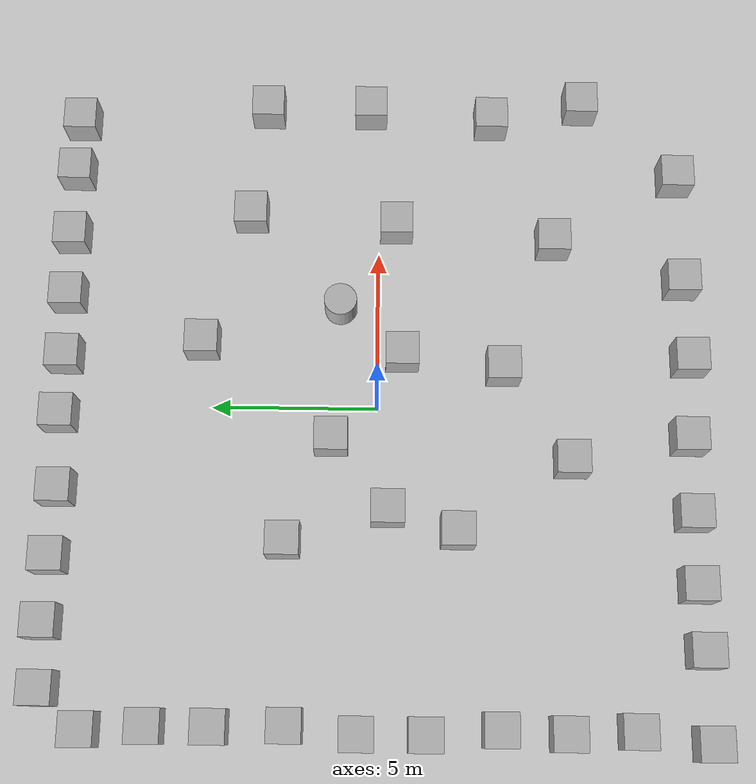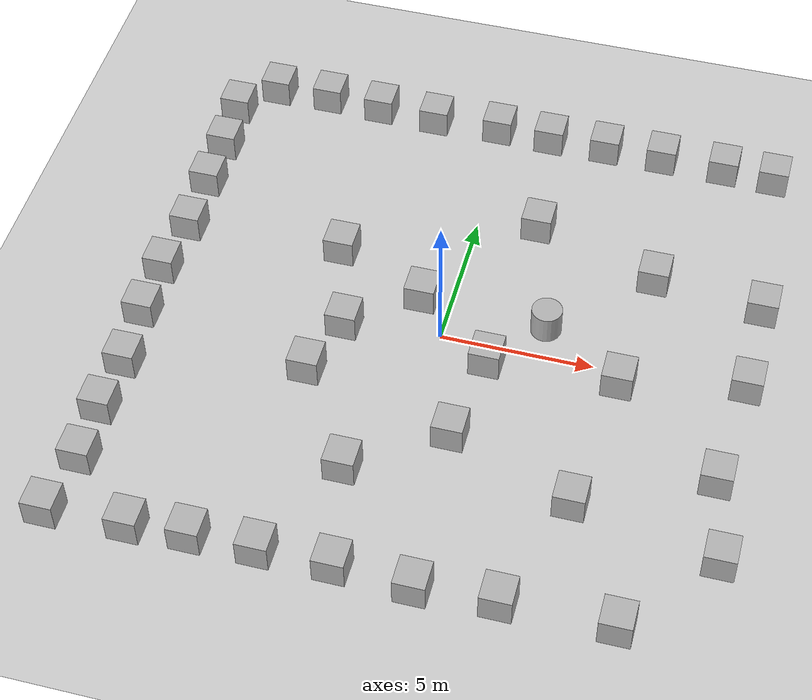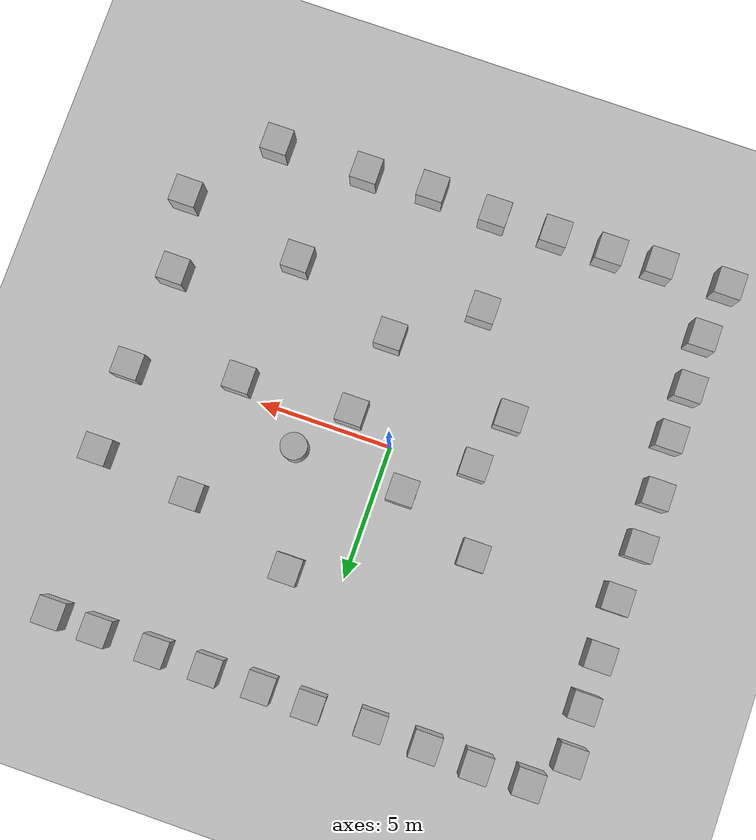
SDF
<sdf version='1.10'>
  <world name='diff_robot_world'>
    <physics type='ode'>
      <max_step_size>0.0030000000000000001</max_step_size>
      <real_time_update_rate>1000</real_time_update_rate>
      <real_time_factor>1</real_time_factor>
    </physics>
    <plugin name='gz::sim::systems::Physics' filename='gz-sim-physics-system'/>
    <plugin name='gz::sim::systems::UserCommands' filename='gz-sim-user-commands-system'/>
    <plugin name='gz::sim::systems::SceneBroadcaster' filename='gz-sim-scene-broadcaster-system'/>
    <plugin name='gz::sim::systems::Sensors' filename='gz-sim-sensors-system'>
      <render_engine>ogre2</render_engine>
    </plugin>
    <plugin name='gz::sim::systems::Imu' filename='gz-sim-imu-system'/>
    <gravity>0 0 -9.8000000000000007</gravity>
    <magnetic_field>5.5644999999999998e-06 2.2875799999999999e-05 -4.2388400000000002e-05</magnetic_field>
    <atmosphere type='adiabatic'/>
    <scene>
      <ambient>0.400000006 0.400000006 0.400000006 1</ambient>
      <background>0.699999988 0.699999988 0.699999988 1</background>
      <shadows>true</shadows>
    </scene>
    <model name='ground_plane'>
      <static>true</static>
      <link name='link'>
        <collision name='collision'>
          <geometry>
            <plane>
              <normal>0 0 1</normal>
              <size>100 100</size>
            </plane>
          </geometry>
          <surface>
            <friction>
              <ode/>
            </friction>
            <bounce/>
            <contact/>
          </surface>
        </collision>
        <visual name='visual'>
          <geometry>
            <plane>
              <normal>0 0 1</normal>
              <size>100 100</size>
            </plane>
          </geometry>
          <material>
            <ambient>0.800000012 0.800000012 0.800000012 1</ambient>
            <diffuse>0.800000012 0.800000012 0.800000012 1</diffuse>
          </material>
        </visual>
        <pose>0 0 0 0 0 0</pose>
        <inertial>
          <pose>0 0 0 0 0 0</pose>
          <mass>1</mass>
          <inertia>
            <ixx>1</ixx>
            <ixy>0</ixy>
            <ixz>0</ixz>
            <iyy>1</iyy>
            <iyz>0</iyz>
            <izz>1</izz>
          </inertia>
        </inertial>
        <enable_wind>false</enable_wind>
      </link>
      <pose>0 0 0 0 0 0</pose>
      <self_collide>false</self_collide>
    </model>
    <model name='box'>
      <pose>-0.9634087473483266 1.3688625796676201 0.49999999738031992 4.9980747396177739e-20 -3.1203451716072498e-20 3.07674891441409e-21</pose>
      <link name='box_link'>
        <inertial>
          <inertia>
            <ixx>0.16666</ixx>
            <ixy>0</ixy>
            <ixz>0</ixz>
            <iyy>0.16666</iyy>
            <iyz>0</iyz>
            <izz>0.16666</izz>
          </inertia>
          <mass>1</mass>
          <pose>0 0 0 0 0 0</pose>
        </inertial>
        <collision name='box_collision'>
          <geometry>
            <box>
              <size>1 1 1</size>
            </box>
          </geometry>
          <surface>
            <friction>
              <ode/>
            </friction>
            <bounce/>
            <contact/>
          </surface>
        </collision>
        <visual name='box_visual'>
          <geometry>
            <box>
              <size>1 1 1</size>
            </box>
          </geometry>
          <material>
            <ambient>0.300000012 0.300000012 0.300000012 1</ambient>
            <diffuse>0.699999988 0.699999988 0.699999988 1</diffuse>
            <specular>1 1 1 1</specular>
          </material>
        </visual>
        <pose>0 0 0 0 0 0</pose>
        <enable_wind>false</enable_wind>
      </link>
      <static>false</static>
      <self_collide>false</self_collide>
    </model>
    <model name='box_0'>
      <pose>1.2883353953918322 -3.8140135786249139 0.49999999738031992 -3.8365972671485688e-20 -2.5801985563961556e-20 -1.3681900801145752e-21</pose>
      <link name='box_link'>
        <inertial>
          <inertia>
            <ixx>0.16666</ixx>
            <ixy>0</ixy>
            <ixz>0</ixz>
            <iyy>0.16666</iyy>
            <iyz>0</iyz>
            <izz>0.16666</izz>
          </inertia>
          <mass>1</mass>
          <pose>0 0 0 0 0 0</pose>
        </inertial>
        <collision name='box_collision'>
          <geometry>
            <box>
              <size>1 1 1</size>
            </box>
          </geometry>
          <surface>
            <friction>
              <ode/>
            </friction>
            <bounce/>
            <contact/>
          </surface>
        </collision>
        <visual name='box_visual'>
          <geometry>
            <box>
              <size>1 1 1</size>
            </box>
          </geometry>
          <material>
            <ambient>0.300000012 0.300000012 0.300000012 1</ambient>
            <diffuse>0.699999988 0.699999988 0.699999988 1</diffuse>
            <specular>1 1 1 1</specular>
          </material>
        </visual>
        <pose>0 0 0 0 0 0</pose>
        <enable_wind>false</enable_wind>
      </link>
      <static>false</static>
      <self_collide>false</self_collide>
    </model>
    <model name='box_1'>
      <pose>2.0217086871739109 5.3420534551731684 0.49999999738031992 4.9980747396177739e-20 -3.1203451716072498e-20 3.07674891441409e-21</pose>
      <link name='box_link'>
        <inertial>
          <inertia>
            <ixx>0.16666</ixx>
            <ixy>0</ixy>
            <ixz>0</ixz>
            <iyy>0.16666</iyy>
            <iyz>0</iyz>
            <izz>0.16666</izz>
          </inertia>
          <mass>1</mass>
          <pose>0 0 0 0 0 0</pose>
        </inertial>
        <collision name='box_collision'>
          <geometry>
            <box>
              <size>1 1 1</size>
            </box>
          </geometry>
          <surface>
            <friction>
              <ode/>
            </friction>
            <bounce/>
            <contact/>
          </surface>
        </collision>
        <visual name='box_visual'>
          <geometry>
            <box>
              <size>1 1 1</size>
            </box>
          </geometry>
          <material>
            <ambient>0.300000012 0.300000012 0.300000012 1</ambient>
            <diffuse>0.699999988 0.699999988 0.699999988 1</diffuse>
            <specular>1 1 1 1</specular>
          </material>
        </visual>
        <pose>0 0 0 0 0 0</pose>
        <enable_wind>false</enable_wind>
      </link>
      <static>false</static>
      <self_collide>false</self_collide>
    </model>
    <model name='box_2'>
      <pose>-4.081543913325933 2.7233802150431523 0.49999999738031992 4.9980747396177739e-20 -3.1203451716072498e-20 3.07674891441409e-21</pose>
      <link name='box_link'>
        <inertial>
          <inertia>
            <ixx>0.16666</ixx>
            <ixy>0</ixy>
            <ixz>0</ixz>
            <iyy>0.16666</iyy>
            <iyz>0</iyz>
            <izz>0.16666</izz>
          </inertia>
          <mass>1</mass>
          <pose>0 0 0 0 0 0</pose>
        </inertial>
        <collision name='box_collision'>
          <geometry>
            <box>
              <size>1 1 1</size>
            </box>
          </geometry>
          <surface>
            <friction>
              <ode/>
            </friction>
            <bounce/>
            <contact/>
          </surface>
        </collision>
        <visual name='box_visual'>
          <geometry>
            <box>
              <size>1 1 1</size>
            </box>
          </geometry>
          <material>
            <ambient>0.300000012 0.300000012 0.300000012 1</ambient>
            <diffuse>0.699999988 0.699999988 0.699999988 1</diffuse>
            <specular>1 1 1 1</specular>
          </material>
        </visual>
        <pose>0 0 0 0 0 0</pose>
        <enable_wind>false</enable_wind>
      </link>
      <static>false</static>
      <self_collide>false</self_collide>
    </model>
    <model name='box_3'>
      <pose>-3.7496723703352135 -2.4130661792074619 0.49999999738031992 4.9980747396177739e-20 -3.1203451716072498e-20 3.07674891441409e-21</pose>
      <link name='box_link'>
        <inertial>
          <inertia>
            <ixx>0.16666</ixx>
            <ixy>0</ixy>
            <ixz>0</ixz>
            <iyy>0.16666</iyy>
            <iyz>0</iyz>
            <izz>0.16666</izz>
          </inertia>
          <mass>1</mass>
          <pose>0 0 0 0 0 0</pose>
        </inertial>
        <collision name='box_collision'>
          <geometry>
            <box>
              <size>1 1 1</size>
            </box>
          </geometry>
          <surface>
            <friction>
              <ode/>
            </friction>
            <bounce/>
            <contact/>
          </surface>
        </collision>
        <visual name='box_visual'>
          <geometry>
            <box>
              <size>1 1 1</size>
            </box>
          </geometry>
          <material>
            <ambient>0.300000012 0.300000012 0.300000012 1</ambient>
            <diffuse>0.699999988 0.699999988 0.699999988 1</diffuse>
            <specular>1 1 1 1</specular>
          </material>
        </visual>
        <pose>0 0 0 0 0 0</pose>
        <enable_wind>false</enable_wind>
      </link>
      <static>false</static>
      <self_collide>false</self_collide>
    </model>
    <model name='box_4'>
      <pose>-1.5745690938959189 -5.8232447263912741 0.49999999738031992 4.9980747396177739e-20 -3.1203451716072498e-20 3.07674891441409e-21</pose>
      <link name='box_link'>
        <inertial>
          <inertia>
            <ixx>0.16666</ixx>
            <ixy>0</ixy>
            <ixz>0</ixz>
            <iyy>0.16666</iyy>
            <iyz>0</iyz>
            <izz>0.16666</izz>
          </inertia>
          <mass>1</mass>
          <pose>0 0 0 0 0 0</pose>
        </inertial>
        <collision name='box_collision'>
          <geometry>
            <box>
              <size>1 1 1</size>
            </box>
          </geometry>
          <surface>
            <friction>
              <ode/>
            </friction>
            <bounce/>
            <contact/>
          </surface>
        </collision>
        <visual name='box_visual'>
          <geometry>
            <box>
              <size>1 1 1</size>
            </box>
          </geometry>
          <material>
            <ambient>0.300000012 0.300000012 0.300000012 1</ambient>
            <diffuse>0.699999988 0.699999988 0.699999988 1</diffuse>
            <specular>1 1 1 1</specular>
          </material>
        </visual>
        <pose>0 0 0 0 0 0</pose>
        <enable_wind>false</enable_wind>
      </link>
      <static>false</static>
      <self_collide>false</self_collide>
    </model>
    <model name='box_5'>
      <pose>5.9096890874497063 -0.54414223329293598 0.49999999738031992 4.9980747396177739e-20 -3.1203451716072498e-20 3.07674891441409e-21</pose>
      <link name='box_link'>
        <inertial>
          <inertia>
            <ixx>0.16666</ixx>
            <ixy>0</ixy>
            <ixz>0</ixz>
            <iyy>0.16666</iyy>
            <iyz>0</iyz>
            <izz>0.16666</izz>
          </inertia>
          <mass>1</mass>
          <pose>0 0 0 0 0 0</pose>
        </inertial>
        <collision name='box_collision'>
          <geometry>
            <box>
              <size>1 1 1</size>
            </box>
          </geometry>
          <surface>
            <friction>
              <ode/>
            </friction>
            <bounce/>
            <contact/>
          </surface>
        </collision>
        <visual name='box_visual'>
          <geometry>
            <box>
              <size>1 1 1</size>
            </box>
          </geometry>
          <material>
            <ambient>0.300000012 0.300000012 0.300000012 1</ambient>
            <diffuse>0.699999988 0.699999988 0.699999988 1</diffuse>
            <specular>1 1 1 1</specular>
          </material>
        </visual>
        <pose>0 0 0 0 0 0</pose>
        <enable_wind>false</enable_wind>
      </link>
      <static>false</static>
      <self_collide>false</self_collide>
    </model>
    <model name='box_6'>
      <pose>6.2234744298795466 3.986266995621651 0.49999999738031992 1.0474352410748287e-20 8.8316415697955254e-20 1.1798344970724298e-22</pose>
      <link name='box_link'>
        <inertial>
          <inertia>
            <ixx>0.16666</ixx>
            <ixy>0</ixy>
            <ixz>0</ixz>
            <iyy>0.16666</iyy>
            <iyz>0</iyz>
            <izz>0.16666</izz>
          </inertia>
          <mass>1</mass>
          <pose>0 0 0 0 0 0</pose>
        </inertial>
        <collision name='box_collision'>
          <geometry>
            <box>
              <size>1 1 1</size>
            </box>
          </geometry>
          <surface>
            <friction>
              <ode/>
            </friction>
            <bounce/>
            <contact/>
          </surface>
        </collision>
        <visual name='box_visual'>
          <geometry>
            <box>
              <size>1 1 1</size>
            </box>
          </geometry>
          <material>
            <ambient>0.300000012 0.300000012 0.300000012 1</ambient>
            <diffuse>0.699999988 0.699999988 0.699999988 1</diffuse>
            <specular>1 1 1 1</specular>
          </material>
        </visual>
        <pose>0 0 0 0 0 0</pose>
        <enable_wind>false</enable_wind>
      </link>
      <static>false</static>
      <self_collide>false</self_collide>
    </model>
    <model name='box_7'>
      <pose>5.4132077069463413 -5.4073851982764829 0.49999999738031992 4.9980747396177739e-20 -3.1203451716072498e-20 3.07674891441409e-21</pose>
      <link name='box_link'>
        <inertial>
          <inertia>
            <ixx>0.16666</ixx>
            <ixy>0</ixy>
            <ixz>0</ixz>
            <iyy>0.16666</iyy>
            <iyz>0</iyz>
            <izz>0.16666</izz>
          </inertia>
          <mass>1</mass>
          <pose>0 0 0 0 0 0</pose>
        </inertial>
        <collision name='box_collision'>
          <geometry>
            <box>
              <size>1 1 1</size>
            </box>
          </geometry>
          <surface>
            <friction>
              <ode/>
            </friction>
            <bounce/>
            <contact/>
          </surface>
        </collision>
        <visual name='box_visual'>
          <geometry>
            <box>
              <size>1 1 1</size>
            </box>
          </geometry>
          <material>
            <ambient>0.300000012 0.300000012 0.300000012 1</ambient>
            <diffuse>0.699999988 0.699999988 0.699999988 1</diffuse>
            <specular>1 1 1 1</specular>
          </material>
        </visual>
        <pose>0 0 0 0 0 0</pose>
        <enable_wind>false</enable_wind>
      </link>
      <static>false</static>
      <self_collide>false</self_collide>
    </model>
    <model name='box_8'>
      <pose>9.3565873409996101 9.4877874167706899 0.49999999824478447 2.364077673559574e-20 -1.6121523966119597e-20 2.768519146214809e-21</pose>
      <link name='box_link'>
        <inertial>
          <inertia>
            <ixx>0.16666</ixx>
            <ixy>0</ixy>
            <ixz>0</ixz>
            <iyy>0.16666</iyy>
            <iyz>0</iyz>
            <izz>0.16666</izz>
          </inertia>
          <mass>1</mass>
          <pose>0 0 0 0 0 0</pose>
        </inertial>
        <collision name='box_collision'>
          <geometry>
            <box>
              <size>1 1 1</size>
            </box>
          </geometry>
          <surface>
            <friction>
              <ode/>
            </friction>
            <bounce/>
            <contact/>
          </surface>
        </collision>
        <visual name='box_visual'>
          <geometry>
            <box>
              <size>1 1 1</size>
            </box>
          </geometry>
          <material>
            <ambient>0.300000012 0.300000012 0.300000012 1</ambient>
            <diffuse>0.699999988 0.699999988 0.699999988 1</diffuse>
            <specular>1 1 1 1</specular>
          </material>
        </visual>
        <pose>0 0 0 0 0 0</pose>
        <enable_wind>false</enable_wind>
      </link>
      <static>false</static>
      <self_collide>false</self_collide>
    </model>
    <model name='box_9'>
      <pose>7.6231862130566235 9.5401951575804702 0.49999999824478447 2.364077673559574e-20 -1.6121523966119597e-20 2.768519146214809e-21</pose>
      <link name='box_link'>
        <inertial>
          <inertia>
            <ixx>0.16666</ixx>
            <ixy>0</ixy>
            <ixz>0</ixz>
            <iyy>0.16666</iyy>
            <iyz>0</iyz>
            <izz>0.16666</izz>
          </inertia>
          <mass>1</mass>
          <pose>0 0 0 0 0 0</pose>
        </inertial>
        <collision name='box_collision'>
          <geometry>
            <box>
              <size>1 1 1</size>
            </box>
          </geometry>
          <surface>
            <friction>
              <ode/>
            </friction>
            <bounce/>
            <contact/>
          </surface>
        </collision>
        <visual name='box_visual'>
          <geometry>
            <box>
              <size>1 1 1</size>
            </box>
          </geometry>
          <material>
            <ambient>0.300000012 0.300000012 0.300000012 1</ambient>
            <diffuse>0.699999988 0.699999988 0.699999988 1</diffuse>
            <specular>1 1 1 1</specular>
          </material>
        </visual>
        <pose>0 0 0 0 0 0</pose>
        <enable_wind>false</enable_wind>
      </link>
      <static>false</static>
      <self_collide>false</self_collide>
    </model>
    <model name='box_8_1'>
      <pose>5.4737988716668937 9.5525448502305004 0.49999999824478447 1.6281751810357478e-20 -3.0935963426003888e-20 3.4892573182497067e-21</pose>
      <link name='box_link'>
        <inertial>
          <inertia>
            <ixx>0.16666</ixx>
            <ixy>0</ixy>
            <ixz>0</ixz>
            <iyy>0.16666</iyy>
            <iyz>0</iyz>
            <izz>0.16666</izz>
          </inertia>
          <mass>1</mass>
          <pose>0 0 0 0 0 0</pose>
        </inertial>
        <collision name='box_collision'>
          <geometry>
            <box>
              <size>1 1 1</size>
            </box>
          </geometry>
          <surface>
            <friction>
              <ode/>
            </friction>
            <bounce/>
            <contact/>
          </surface>
        </collision>
        <visual name='box_visual'>
          <geometry>
            <box>
              <size>1 1 1</size>
            </box>
          </geometry>
          <material>
            <ambient>0.300000012 0.300000012 0.300000012 1</ambient>
            <diffuse>0.699999988 0.699999988 0.699999988 1</diffuse>
            <specular>1 1 1 1</specular>
          </material>
        </visual>
        <pose>0 0 0 0 0 0</pose>
        <enable_wind>false</enable_wind>
      </link>
      <static>false</static>
      <self_collide>false</self_collide>
    </model>
    <model name='box_8_2'>
      <pose>3.492480944589591 9.5415473521650291 0.49999999824478447 1.6281751810357478e-20 -3.0935963426003888e-20 3.4892573182497067e-21</pose>
      <link name='box_link'>
        <inertial>
          <inertia>
            <ixx>0.16666</ixx>
            <ixy>0</ixy>
            <ixz>0</ixz>
            <iyy>0.16666</iyy>
            <iyz>0</iyz>
            <izz>0.16666</izz>
          </inertia>
          <mass>1</mass>
          <pose>0 0 0 0 0 0</pose>
        </inertial>
        <collision name='box_collision'>
          <geometry>
            <box>
              <size>1 1 1</size>
            </box>
          </geometry>
          <surface>
            <friction>
              <ode/>
            </friction>
            <bounce/>
            <contact/>
          </surface>
        </collision>
        <visual name='box_visual'>
          <geometry>
            <box>
              <size>1 1 1</size>
            </box>
          </geometry>
          <material>
            <ambient>0.300000012 0.300000012 0.300000012 1</ambient>
            <diffuse>0.699999988 0.699999988 0.699999988 1</diffuse>
            <specular>1 1 1 1</specular>
          </material>
        </visual>
        <pose>0 0 0 0 0 0</pose>
        <enable_wind>false</enable_wind>
      </link>
      <static>false</static>
      <self_collide>false</self_collide>
    </model>
    <model name='box_8_3'>
      <pose>1.5264982181197233 9.5167588198074107 0.49999999824478447 1.6281751810357478e-20 -3.0935963426003888e-20 3.4892573182497067e-21</pose>
      <link name='box_link'>
        <inertial>
          <inertia>
            <ixx>0.16666</ixx>
            <ixy>0</ixy>
            <ixz>0</ixz>
            <iyy>0.16666</iyy>
            <iyz>0</iyz>
            <izz>0.16666</izz>
          </inertia>
          <mass>1</mass>
          <pose>0 0 0 0 0 0</pose>
        </inertial>
        <collision name='box_collision'>
          <geometry>
            <box>
              <size>1 1 1</size>
            </box>
          </geometry>
          <surface>
            <friction>
              <ode/>
            </friction>
            <bounce/>
            <contact/>
          </surface>
        </collision>
        <visual name='box_visual'>
          <geometry>
            <box>
              <size>1 1 1</size>
            </box>
          </geometry>
          <material>
            <ambient>0.300000012 0.300000012 0.300000012 1</ambient>
            <diffuse>0.699999988 0.699999988 0.699999988 1</diffuse>
            <specular>1 1 1 1</specular>
          </material>
        </visual>
        <pose>0 0 0 0 0 0</pose>
        <enable_wind>false</enable_wind>
      </link>
      <static>false</static>
      <self_collide>false</self_collide>
    </model>
    <model name='box_8_4'>
      <pose>-0.32313615432875409 9.5604271316419371 0.49999999824478447 1.6281751810357478e-20 -3.0935963426003888e-20 3.4892573182497067e-21</pose>
      <link name='box_link'>
        <inertial>
          <inertia>
            <ixx>0.16666</ixx>
            <ixy>0</ixy>
            <ixz>0</ixz>
            <iyy>0.16666</iyy>
            <iyz>0</iyz>
            <izz>0.16666</izz>
          </inertia>
          <mass>1</mass>
          <pose>0 0 0 0 0 0</pose>
        </inertial>
        <collision name='box_collision'>
          <geometry>
            <box>
              <size>1 1 1</size>
            </box>
          </geometry>
          <surface>
            <friction>
              <ode/>
            </friction>
            <bounce/>
            <contact/>
          </surface>
        </collision>
        <visual name='box_visual'>
          <geometry>
            <box>
              <size>1 1 1</size>
            </box>
          </geometry>
          <material>
            <ambient>0.300000012 0.300000012 0.300000012 1</ambient>
            <diffuse>0.699999988 0.699999988 0.699999988 1</diffuse>
            <specular>1 1 1 1</specular>
          </material>
        </visual>
        <pose>0 0 0 0 0 0</pose>
        <enable_wind>false</enable_wind>
      </link>
      <static>false</static>
      <self_collide>false</self_collide>
    </model>
    <model name='box_8_5'>
      <pose>-2.5890402092074574 9.4723698817662374 0.49999999824478447 1.6281751810357478e-20 -3.0935963426003888e-20 3.4892573182497067e-21</pose>
      <link name='box_link'>
        <inertial>
          <inertia>
            <ixx>0.16666</ixx>
            <ixy>0</ixy>
            <ixz>0</ixz>
            <iyy>0.16666</iyy>
            <iyz>0</iyz>
            <izz>0.16666</izz>
          </inertia>
          <mass>1</mass>
          <pose>0 0 0 0 0 0</pose>
        </inertial>
        <collision name='box_collision'>
          <geometry>
            <box>
              <size>1 1 1</size>
            </box>
          </geometry>
          <surface>
            <friction>
              <ode/>
            </friction>
            <bounce/>
            <contact/>
          </surface>
        </collision>
        <visual name='box_visual'>
          <geometry>
            <box>
              <size>1 1 1</size>
            </box>
          </geometry>
          <material>
            <ambient>0.300000012 0.300000012 0.300000012 1</ambient>
            <diffuse>0.699999988 0.699999988 0.699999988 1</diffuse>
            <specular>1 1 1 1</specular>
          </material>
        </visual>
        <pose>0 0 0 0 0 0</pose>
        <enable_wind>false</enable_wind>
      </link>
      <static>false</static>
      <self_collide>false</self_collide>
    </model>
    <model name='box_8_6'>
      <pose>-4.6165908721475599 9.5400372589440465 0.49999999824478447 1.6281751810357478e-20 -3.0935963426003888e-20 3.4892573182497067e-21</pose>
      <link name='box_link'>
        <inertial>
          <inertia>
            <ixx>0.16666</ixx>
            <ixy>0</ixy>
            <ixz>0</ixz>
            <iyy>0.16666</iyy>
            <iyz>0</iyz>
            <izz>0.16666</izz>
          </inertia>
          <mass>1</mass>
          <pose>0 0 0 0 0 0</pose>
        </inertial>
        <collision name='box_collision'>
          <geometry>
            <box>
              <size>1 1 1</size>
            </box>
          </geometry>
          <surface>
            <friction>
              <ode/>
            </friction>
            <bounce/>
            <contact/>
          </surface>
        </collision>
        <visual name='box_visual'>
          <geometry>
            <box>
              <size>1 1 1</size>
            </box>
          </geometry>
          <material>
            <ambient>0.300000012 0.300000012 0.300000012 1</ambient>
            <diffuse>0.699999988 0.699999988 0.699999988 1</diffuse>
            <specular>1 1 1 1</specular>
          </material>
        </visual>
        <pose>0 0 0 0 0 0</pose>
        <enable_wind>false</enable_wind>
      </link>
      <static>false</static>
      <self_collide>false</self_collide>
    </model>
    <model name='box_8_7'>
      <pose>-6.5155839152954655 9.6138005460699141 0.49999999824478447 1.6281751810357478e-20 -3.0935963426003888e-20 3.4892573182497067e-21</pose>
      <link name='box_link'>
        <inertial>
          <inertia>
            <ixx>0.16666</ixx>
            <ixy>0</ixy>
            <ixz>0</ixz>
            <iyy>0.16666</iyy>
            <iyz>0</iyz>
            <izz>0.16666</izz>
          </inertia>
          <mass>1</mass>
          <pose>0 0 0 0 0 0</pose>
        </inertial>
        <collision name='box_collision'>
          <geometry>
            <box>
              <size>1 1 1</size>
            </box>
          </geometry>
          <surface>
            <friction>
              <ode/>
            </friction>
            <bounce/>
            <contact/>
          </surface>
        </collision>
        <visual name='box_visual'>
          <geometry>
            <box>
              <size>1 1 1</size>
            </box>
          </geometry>
          <material>
            <ambient>0.300000012 0.300000012 0.300000012 1</ambient>
            <diffuse>0.699999988 0.699999988 0.699999988 1</diffuse>
            <specular>1 1 1 1</specular>
          </material>
        </visual>
        <pose>0 0 0 0 0 0</pose>
        <enable_wind>false</enable_wind>
      </link>
      <static>false</static>
      <self_collide>false</self_collide>
    </model>
    <model name='box_8_8'>
      <pose>-8.4021265702489529 9.5675414296998422 0.49999999824478447 1.6281751810357478e-20 -3.0935963426003888e-20 3.4892573182497067e-21</pose>
      <link name='box_link'>
        <inertial>
          <inertia>
            <ixx>0.16666</ixx>
            <ixy>0</ixy>
            <ixz>0</ixz>
            <iyy>0.16666</iyy>
            <iyz>0</iyz>
            <izz>0.16666</izz>
          </inertia>
          <mass>1</mass>
          <pose>0 0 0 0 0 0</pose>
        </inertial>
        <collision name='box_collision'>
          <geometry>
            <box>
              <size>1 1 1</size>
            </box>
          </geometry>
          <surface>
            <friction>
              <ode/>
            </friction>
            <bounce/>
            <contact/>
          </surface>
        </collision>
        <visual name='box_visual'>
          <geometry>
            <box>
              <size>1 1 1</size>
            </box>
          </geometry>
          <material>
            <ambient>0.300000012 0.300000012 0.300000012 1</ambient>
            <diffuse>0.699999988 0.699999988 0.699999988 1</diffuse>
            <specular>1 1 1 1</specular>
          </material>
        </visual>
        <pose>0 0 0 0 0 0</pose>
        <enable_wind>false</enable_wind>
      </link>
      <static>false</static>
      <self_collide>false</self_collide>
    </model>
    <model name='box_8_9'>
      <pose>-9.5212673981657616 8.3193879202012191 0.49999999824478447 1.6281751810357478e-20 -3.0935963426003888e-20 3.4892573182497067e-21</pose>
      <link name='box_link'>
        <inertial>
          <inertia>
            <ixx>0.16666</ixx>
            <ixy>0</ixy>
            <ixz>0</ixz>
            <iyy>0.16666</iyy>
            <iyz>0</iyz>
            <izz>0.16666</izz>
          </inertia>
          <mass>1</mass>
          <pose>0 0 0 0 0 0</pose>
        </inertial>
        <collision name='box_collision'>
          <geometry>
            <box>
              <size>1 1 1</size>
            </box>
          </geometry>
          <surface>
            <friction>
              <ode/>
            </friction>
            <bounce/>
            <contact/>
          </surface>
        </collision>
        <visual name='box_visual'>
          <geometry>
            <box>
              <size>1 1 1</size>
            </box>
          </geometry>
          <material>
            <ambient>0.300000012 0.300000012 0.300000012 1</ambient>
            <diffuse>0.699999988 0.699999988 0.699999988 1</diffuse>
            <specular>1 1 1 1</specular>
          </material>
        </visual>
        <pose>0 0 0 0 0 0</pose>
        <enable_wind>false</enable_wind>
      </link>
      <static>false</static>
      <self_collide>false</self_collide>
    </model>
    <model name='box_8_10'>
      <pose>-9.4148464617709209 6.4680330247149485 0.49999999824478447 1.6281751810357478e-20 -3.0935963426003888e-20 3.4892573182497067e-21</pose>
      <link name='box_link'>
        <inertial>
          <inertia>
            <ixx>0.16666</ixx>
            <ixy>0</ixy>
            <ixz>0</ixz>
            <iyy>0.16666</iyy>
            <iyz>0</iyz>
            <izz>0.16666</izz>
          </inertia>
          <mass>1</mass>
          <pose>0 0 0 0 0 0</pose>
        </inertial>
        <collision name='box_collision'>
          <geometry>
            <box>
              <size>1 1 1</size>
            </box>
          </geometry>
          <surface>
            <friction>
              <ode/>
            </friction>
            <bounce/>
            <contact/>
          </surface>
        </collision>
        <visual name='box_visual'>
          <geometry>
            <box>
              <size>1 1 1</size>
            </box>
          </geometry>
          <material>
            <ambient>0.300000012 0.300000012 0.300000012 1</ambient>
            <diffuse>0.699999988 0.699999988 0.699999988 1</diffuse>
            <specular>1 1 1 1</specular>
          </material>
        </visual>
        <pose>0 0 0 0 0 0</pose>
        <enable_wind>false</enable_wind>
      </link>
      <static>false</static>
      <self_collide>false</self_collide>
    </model>
    <model name='box_8_11'>
      <pose>-9.4148460529440925 4.6364374343888173 0.49999999824478447 1.6281751810357478e-20 -3.0935963426003888e-20 3.4892573182497067e-21</pose>
      <link name='box_link'>
        <inertial>
          <inertia>
            <ixx>0.16666</ixx>
            <ixy>0</ixy>
            <ixz>0</ixz>
            <iyy>0.16666</iyy>
            <iyz>0</iyz>
            <izz>0.16666</izz>
          </inertia>
          <mass>1</mass>
          <pose>0 0 0 0 0 0</pose>
        </inertial>
        <collision name='box_collision'>
          <geometry>
            <box>
              <size>1 1 1</size>
            </box>
          </geometry>
          <surface>
            <friction>
              <ode/>
            </friction>
            <bounce/>
            <contact/>
          </surface>
        </collision>
        <visual name='box_visual'>
          <geometry>
            <box>
              <size>1 1 1</size>
            </box>
          </geometry>
          <material>
            <ambient>0.300000012 0.300000012 0.300000012 1</ambient>
            <diffuse>0.699999988 0.699999988 0.699999988 1</diffuse>
            <specular>1 1 1 1</specular>
          </material>
        </visual>
        <pose>0 0 0 0 0 0</pose>
        <enable_wind>false</enable_wind>
      </link>
      <static>false</static>
      <self_collide>false</self_collide>
    </model>
    <model name='box_8_12'>
      <pose>-9.3615201152689806 2.513790683755464 0.49999999824478447 1.6281751810357478e-20 -3.0935963426003888e-20 3.4892573182497067e-21</pose>
      <link name='box_link'>
        <inertial>
          <inertia>
            <ixx>0.16666</ixx>
            <ixy>0</ixy>
            <ixz>0</ixz>
            <iyy>0.16666</iyy>
            <iyz>0</iyz>
            <izz>0.16666</izz>
          </inertia>
          <mass>1</mass>
          <pose>0 0 0 0 0 0</pose>
        </inertial>
        <collision name='box_collision'>
          <geometry>
            <box>
              <size>1 1 1</size>
            </box>
          </geometry>
          <surface>
            <friction>
              <ode/>
            </friction>
            <bounce/>
            <contact/>
          </surface>
        </collision>
        <visual name='box_visual'>
          <geometry>
            <box>
              <size>1 1 1</size>
            </box>
          </geometry>
          <material>
            <ambient>0.300000012 0.300000012 0.300000012 1</ambient>
            <diffuse>0.699999988 0.699999988 0.699999988 1</diffuse>
            <specular>1 1 1 1</specular>
          </material>
        </visual>
        <pose>0 0 0 0 0 0</pose>
        <enable_wind>false</enable_wind>
      </link>
      <static>false</static>
      <self_collide>false</self_collide>
    </model>
    <model name='box_8_13'>
      <pose>-9.5742964793051755 0.48626485503910732 0.49999999824478447 1.6281751810357478e-20 -3.0935963426003888e-20 3.4892573182497067e-21</pose>
      <link name='box_link'>
        <inertial>
          <inertia>
            <ixx>0.16666</ixx>
            <ixy>0</ixy>
            <ixz>0</ixz>
            <iyy>0.16666</iyy>
            <iyz>0</iyz>
            <izz>0.16666</izz>
          </inertia>
          <mass>1</mass>
          <pose>0 0 0 0 0 0</pose>
        </inertial>
        <collision name='box_collision'>
          <geometry>
            <box>
              <size>1 1 1</size>
            </box>
          </geometry>
          <surface>
            <friction>
              <ode/>
            </friction>
            <bounce/>
            <contact/>
          </surface>
        </collision>
        <visual name='box_visual'>
          <geometry>
            <box>
              <size>1 1 1</size>
            </box>
          </geometry>
          <material>
            <ambient>0.300000012 0.300000012 0.300000012 1</ambient>
            <diffuse>0.699999988 0.699999988 0.699999988 1</diffuse>
            <specular>1 1 1 1</specular>
          </material>
        </visual>
        <pose>0 0 0 0 0 0</pose>
        <enable_wind>false</enable_wind>
      </link>
      <static>false</static>
      <self_collide>false</self_collide>
    </model>
    <model name='box_8_14'>
      <pose>-9.5742958874423749 -1.4669876318293507 0.49999999824478447 1.6281751810357478e-20 -3.0935963426003888e-20 3.4892573182497067e-21</pose>
      <link name='box_link'>
        <inertial>
          <inertia>
            <ixx>0.16666</ixx>
            <ixy>0</ixy>
            <ixz>0</ixz>
            <iyy>0.16666</iyy>
            <iyz>0</iyz>
            <izz>0.16666</izz>
          </inertia>
          <mass>1</mass>
          <pose>0 0 0 0 0 0</pose>
        </inertial>
        <collision name='box_collision'>
          <geometry>
            <box>
              <size>1 1 1</size>
            </box>
          </geometry>
          <surface>
            <friction>
              <ode/>
            </friction>
            <bounce/>
            <contact/>
          </surface>
        </collision>
        <visual name='box_visual'>
          <geometry>
            <box>
              <size>1 1 1</size>
            </box>
          </geometry>
          <material>
            <ambient>0.300000012 0.300000012 0.300000012 1</ambient>
            <diffuse>0.699999988 0.699999988 0.699999988 1</diffuse>
            <specular>1 1 1 1</specular>
          </material>
        </visual>
        <pose>0 0 0 0 0 0</pose>
        <enable_wind>false</enable_wind>
      </link>
      <static>false</static>
      <self_collide>false</self_collide>
    </model>
    <model name='box_8_15'>
      <pose>-9.4148446916939292 -3.5924114219019128 0.49999999824478447 1.6281751810357478e-20 -3.0935963426003888e-20 3.4892573182497067e-21</pose>
      <link name='box_link'>
        <inertial>
          <inertia>
            <ixx>0.16666</ixx>
            <ixy>0</ixy>
            <ixz>0</ixz>
            <iyy>0.16666</iyy>
            <iyz>0</iyz>
            <izz>0.16666</izz>
          </inertia>
          <mass>1</mass>
          <pose>0 0 0 0 0 0</pose>
        </inertial>
        <collision name='box_collision'>
          <geometry>
            <box>
              <size>1 1 1</size>
            </box>
          </geometry>
          <surface>
            <friction>
              <ode/>
            </friction>
            <bounce/>
            <contact/>
          </surface>
        </collision>
        <visual name='box_visual'>
          <geometry>
            <box>
              <size>1 1 1</size>
            </box>
          </geometry>
          <material>
            <ambient>0.300000012 0.300000012 0.300000012 1</ambient>
            <diffuse>0.699999988 0.699999988 0.699999988 1</diffuse>
            <specular>1 1 1 1</specular>
          </material>
        </visual>
        <pose>0 0 0 0 0 0</pose>
        <enable_wind>false</enable_wind>
      </link>
      <static>false</static>
      <self_collide>false</self_collide>
    </model>
    <model name='box_8_16'>
      <pose>-9.5035816782641902 -5.5099098937385556 0.49999999824478447 1.6281751810357478e-20 -3.0935963426003888e-20 3.4892573182497067e-21</pose>
      <link name='box_link'>
        <inertial>
          <inertia>
            <ixx>0.16666</ixx>
            <ixy>0</ixy>
            <ixz>0</ixz>
            <iyy>0.16666</iyy>
            <iyz>0</iyz>
            <izz>0.16666</izz>
          </inertia>
          <mass>1</mass>
          <pose>0 0 0 0 0 0</pose>
        </inertial>
        <collision name='box_collision'>
          <geometry>
            <box>
              <size>1 1 1</size>
            </box>
          </geometry>
          <surface>
            <friction>
              <ode/>
            </friction>
            <bounce/>
            <contact/>
          </surface>
        </collision>
        <visual name='box_visual'>
          <geometry>
            <box>
              <size>1 1 1</size>
            </box>
          </geometry>
          <material>
            <ambient>0.300000012 0.300000012 0.300000012 1</ambient>
            <diffuse>0.699999988 0.699999988 0.699999988 1</diffuse>
            <specular>1 1 1 1</specular>
          </material>
        </visual>
        <pose>0 0 0 0 0 0</pose>
        <enable_wind>false</enable_wind>
      </link>
      <static>false</static>
      <self_collide>false</self_collide>
    </model>
    <model name='box_8_17'>
      <pose>-9.4148457760721485 -7.4689945740362651 0.49999999824478447 1.6281751810357478e-20 -3.0935963426003888e-20 3.4892573182497067e-21</pose>
      <link name='box_link'>
        <inertial>
          <inertia>
            <ixx>0.16666</ixx>
            <ixy>0</ixy>
            <ixz>0</ixz>
            <iyy>0.16666</iyy>
            <iyz>0</iyz>
            <izz>0.16666</izz>
          </inertia>
          <mass>1</mass>
          <pose>0 0 0 0 0 0</pose>
        </inertial>
        <collision name='box_collision'>
          <geometry>
            <box>
              <size>1 1 1</size>
            </box>
          </geometry>
          <surface>
            <friction>
              <ode/>
            </friction>
            <bounce/>
            <contact/>
          </surface>
        </collision>
        <visual name='box_visual'>
          <geometry>
            <box>
              <size>1 1 1</size>
            </box>
          </geometry>
          <material>
            <ambient>0.300000012 0.300000012 0.300000012 1</ambient>
            <diffuse>0.699999988 0.699999988 0.699999988 1</diffuse>
            <specular>1 1 1 1</specular>
          </material>
        </visual>
        <pose>0 0 0 0 0 0</pose>
        <enable_wind>false</enable_wind>
      </link>
      <static>false</static>
      <self_collide>false</self_collide>
    </model>
    <model name='box_8_18'>
      <pose>-9.7231722943082133 -9.5790699910369135 0.49999999824478447 1.6281751810357478e-20 -3.0935963426003888e-20 3.4892573182497067e-21</pose>
      <link name='box_link'>
        <inertial>
          <inertia>
            <ixx>0.16666</ixx>
            <ixy>0</ixy>
            <ixz>0</ixz>
            <iyy>0.16666</iyy>
            <iyz>0</iyz>
            <izz>0.16666</izz>
          </inertia>
          <mass>1</mass>
          <pose>0 0 0 0 0 0</pose>
        </inertial>
        <collision name='box_collision'>
          <geometry>
            <box>
              <size>1 1 1</size>
            </box>
          </geometry>
          <surface>
            <friction>
              <ode/>
            </friction>
            <bounce/>
            <contact/>
          </surface>
        </collision>
        <visual name='box_visual'>
          <geometry>
            <box>
              <size>1 1 1</size>
            </box>
          </geometry>
          <material>
            <ambient>0.300000012 0.300000012 0.300000012 1</ambient>
            <diffuse>0.699999988 0.699999988 0.699999988 1</diffuse>
            <specular>1 1 1 1</specular>
          </material>
        </visual>
        <pose>0 0 0 0 0 0</pose>
        <enable_wind>false</enable_wind>
      </link>
      <static>false</static>
      <self_collide>false</self_collide>
    </model>
    <model name='box_8_19'>
      <pose>-7.1467988913367009 -9.4981250955854186 0.49999999824478447 1.6281751810357478e-20 -3.0935963426003888e-20 3.4892573182497067e-21</pose>
      <link name='box_link'>
        <inertial>
          <inertia>
            <ixx>0.16666</ixx>
            <ixy>0</ixy>
            <ixz>0</ixz>
            <iyy>0.16666</iyy>
            <iyz>0</iyz>
            <izz>0.16666</izz>
          </inertia>
          <mass>1</mass>
          <pose>0 0 0 0 0 0</pose>
        </inertial>
        <collision name='box_collision'>
          <geometry>
            <box>
              <size>1 1 1</size>
            </box>
          </geometry>
          <surface>
            <friction>
              <ode/>
            </friction>
            <bounce/>
            <contact/>
          </surface>
        </collision>
        <visual name='box_visual'>
          <geometry>
            <box>
              <size>1 1 1</size>
            </box>
          </geometry>
          <material>
            <ambient>0.300000012 0.300000012 0.300000012 1</ambient>
            <diffuse>0.699999988 0.699999988 0.699999988 1</diffuse>
            <specular>1 1 1 1</specular>
          </material>
        </visual>
        <pose>0 0 0 0 0 0</pose>
        <enable_wind>false</enable_wind>
      </link>
      <static>false</static>
      <self_collide>false</self_collide>
    </model>
    <model name='box_8_20'>
      <pose>-5.2653262856854042 -9.3813231857213104 0.49999999824478447 1.6281751810357478e-20 -3.0935963426003888e-20 3.4892573182497067e-21</pose>
      <link name='box_link'>
        <inertial>
          <inertia>
            <ixx>0.16666</ixx>
            <ixy>0</ixy>
            <ixz>0</ixz>
            <iyy>0.16666</iyy>
            <iyz>0</iyz>
            <izz>0.16666</izz>
          </inertia>
          <mass>1</mass>
          <pose>0 0 0 0 0 0</pose>
        </inertial>
        <collision name='box_collision'>
          <geometry>
            <box>
              <size>1 1 1</size>
            </box>
          </geometry>
          <surface>
            <friction>
              <ode/>
            </friction>
            <bounce/>
            <contact/>
          </surface>
        </collision>
        <visual name='box_visual'>
          <geometry>
            <box>
              <size>1 1 1</size>
            </box>
          </geometry>
          <material>
            <ambient>0.300000012 0.300000012 0.300000012 1</ambient>
            <diffuse>0.699999988 0.699999988 0.699999988 1</diffuse>
            <specular>1 1 1 1</specular>
          </material>
        </visual>
        <pose>0 0 0 0 0 0</pose>
        <enable_wind>false</enable_wind>
      </link>
      <static>false</static>
      <self_collide>false</self_collide>
    </model>
    <model name='box_8_21'>
      <pose>-3.1593328296332928 -9.361710451507772 0.49999999824478447 1.6281751810357478e-20 -3.0935963426003888e-20 3.4892573182497067e-21</pose>
      <link name='box_link'>
        <inertial>
          <inertia>
            <ixx>0.16666</ixx>
            <ixy>0</ixy>
            <ixz>0</ixz>
            <iyy>0.16666</iyy>
            <iyz>0</iyz>
            <izz>0.16666</izz>
          </inertia>
          <mass>1</mass>
          <pose>0 0 0 0 0 0</pose>
        </inertial>
        <collision name='box_collision'>
          <geometry>
            <box>
              <size>1 1 1</size>
            </box>
          </geometry>
          <surface>
            <friction>
              <ode/>
            </friction>
            <bounce/>
            <contact/>
          </surface>
        </collision>
        <visual name='box_visual'>
          <geometry>
            <box>
              <size>1 1 1</size>
            </box>
          </geometry>
          <material>
            <ambient>0.300000012 0.300000012 0.300000012 1</ambient>
            <diffuse>0.699999988 0.699999988 0.699999988 1</diffuse>
            <specular>1 1 1 1</specular>
          </material>
        </visual>
        <pose>0 0 0 0 0 0</pose>
        <enable_wind>false</enable_wind>
      </link>
      <static>false</static>
      <self_collide>false</self_collide>
    </model>
    <model name='box_8_22'>
      <pose>-0.8446348542786879 -9.346018365171755 0.49999999824478447 1.6281751810357478e-20 -3.0935963426003888e-20 3.4892573182497067e-21</pose>
      <link name='box_link'>
        <inertial>
          <inertia>
            <ixx>0.16666</ixx>
            <ixy>0</ixy>
            <ixz>0</ixz>
            <iyy>0.16666</iyy>
            <iyz>0</iyz>
            <izz>0.16666</izz>
          </inertia>
          <mass>1</mass>
          <pose>0 0 0 0 0 0</pose>
        </inertial>
        <collision name='box_collision'>
          <geometry>
            <box>
              <size>1 1 1</size>
            </box>
          </geometry>
          <surface>
            <friction>
              <ode/>
            </friction>
            <bounce/>
            <contact/>
          </surface>
        </collision>
        <visual name='box_visual'>
          <geometry>
            <box>
              <size>1 1 1</size>
            </box>
          </geometry>
          <material>
            <ambient>0.300000012 0.300000012 0.300000012 1</ambient>
            <diffuse>0.699999988 0.699999988 0.699999988 1</diffuse>
            <specular>1 1 1 1</specular>
          </material>
        </visual>
        <pose>0 0 0 0 0 0</pose>
        <enable_wind>false</enable_wind>
      </link>
      <static>false</static>
      <self_collide>false</self_collide>
    </model>
    <model name='box_8_23'>
      <pose>1.6152109730921893 -9.4812046183395768 0.49999999824478447 1.6281751810357478e-20 -3.0935963426003888e-20 3.4892573182497067e-21</pose>
      <link name='box_link'>
        <inertial>
          <inertia>
            <ixx>0.16666</ixx>
            <ixy>0</ixy>
            <ixz>0</ixz>
            <iyy>0.16666</iyy>
            <iyz>0</iyz>
            <izz>0.16666</izz>
          </inertia>
          <mass>1</mass>
          <pose>0 0 0 0 0 0</pose>
        </inertial>
        <collision name='box_collision'>
          <geometry>
            <box>
              <size>1 1 1</size>
            </box>
          </geometry>
          <surface>
            <friction>
              <ode/>
            </friction>
            <bounce/>
            <contact/>
          </surface>
        </collision>
        <visual name='box_visual'>
          <geometry>
            <box>
              <size>1 1 1</size>
            </box>
          </geometry>
          <material>
            <ambient>0.300000012 0.300000012 0.300000012 1</ambient>
            <diffuse>0.699999988 0.699999988 0.699999988 1</diffuse>
            <specular>1 1 1 1</specular>
          </material>
        </visual>
        <pose>0 0 0 0 0 0</pose>
        <enable_wind>false</enable_wind>
      </link>
      <static>false</static>
      <self_collide>false</self_collide>
    </model>
    <model name='box_8_24'>
      <pose>4.1277118234873669 -9.3420763022534299 0.49999999824478447 1.6281751810357478e-20 -3.0935963426003888e-20 3.4892573182497067e-21</pose>
      <link name='box_link'>
        <inertial>
          <inertia>
            <ixx>0.16666</ixx>
            <ixy>0</ixy>
            <ixz>0</ixz>
            <iyy>0.16666</iyy>
            <iyz>0</iyz>
            <izz>0.16666</izz>
          </inertia>
          <mass>1</mass>
          <pose>0 0 0 0 0 0</pose>
        </inertial>
        <collision name='box_collision'>
          <geometry>
            <box>
              <size>1 1 1</size>
            </box>
          </geometry>
          <surface>
            <friction>
              <ode/>
            </friction>
            <bounce/>
            <contact/>
          </surface>
        </collision>
        <visual name='box_visual'>
          <geometry>
            <box>
              <size>1 1 1</size>
            </box>
          </geometry>
          <material>
            <ambient>0.300000012 0.300000012 0.300000012 1</ambient>
            <diffuse>0.699999988 0.699999988 0.699999988 1</diffuse>
            <specular>1 1 1 1</specular>
          </material>
        </visual>
        <pose>0 0 0 0 0 0</pose>
        <enable_wind>false</enable_wind>
      </link>
      <static>false</static>
      <self_collide>false</self_collide>
    </model>
    <model name='box_8_25'>
      <pose>7.5878781482685511 -9.297635883843018 0.49999999824478447 1.6281751810357478e-20 -3.0935963426003888e-20 3.4892573182497067e-21</pose>
      <link name='box_link'>
        <inertial>
          <inertia>
            <ixx>0.16666</ixx>
            <ixy>0</ixy>
            <ixz>0</ixz>
            <iyy>0.16666</iyy>
            <iyz>0</iyz>
            <izz>0.16666</izz>
          </inertia>
          <mass>1</mass>
          <pose>0 0 0 0 0 0</pose>
        </inertial>
        <collision name='box_collision'>
          <geometry>
            <box>
              <size>1 1 1</size>
            </box>
          </geometry>
          <surface>
            <friction>
              <ode/>
            </friction>
            <bounce/>
            <contact/>
          </surface>
        </collision>
        <visual name='box_visual'>
          <geometry>
            <box>
              <size>1 1 1</size>
            </box>
          </geometry>
          <material>
            <ambient>0.300000012 0.300000012 0.300000012 1</ambient>
            <diffuse>0.699999988 0.699999988 0.699999988 1</diffuse>
            <specular>1 1 1 1</specular>
          </material>
        </visual>
        <pose>0 0 0 0 0 0</pose>
        <enable_wind>false</enable_wind>
      </link>
      <static>false</static>
      <self_collide>false</self_collide>
    </model>
    <model name='box_8_26'>
      <pose>10.078769784268822 -6.3670232023119633 0.49999999824478447 1.6281751810357478e-20 -3.0935963426003888e-20 3.4892573182497067e-21</pose>
      <link name='box_link'>
        <inertial>
          <inertia>
            <ixx>0.16666</ixx>
            <ixy>0</ixy>
            <ixz>0</ixz>
            <iyy>0.16666</iyy>
            <iyz>0</iyz>
            <izz>0.16666</izz>
          </inertia>
          <mass>1</mass>
          <pose>0 0 0 0 0 0</pose>
        </inertial>
        <collision name='box_collision'>
          <geometry>
            <box>
              <size>1 1 1</size>
            </box>
          </geometry>
          <surface>
            <friction>
              <ode/>
            </friction>
            <bounce/>
            <contact/>
          </surface>
        </collision>
        <visual name='box_visual'>
          <geometry>
            <box>
              <size>1 1 1</size>
            </box>
          </geometry>
          <material>
            <ambient>0.300000012 0.300000012 0.300000012 1</ambient>
            <diffuse>0.699999988 0.699999988 0.699999988 1</diffuse>
            <specular>1 1 1 1</specular>
          </material>
        </visual>
        <pose>0 0 0 0 0 0</pose>
        <enable_wind>false</enable_wind>
      </link>
      <static>false</static>
      <self_collide>false</self_collide>
    </model>
    <model name='box_8_27'>
      <pose>9.5169550426832998 -3.516156560799959 0.49999999824478447 1.6281751810357478e-20 -3.0935963426003888e-20 3.4892573182497067e-21</pose>
      <link name='box_link'>
        <inertial>
          <inertia>
            <ixx>0.16666</ixx>
            <ixy>0</ixy>
            <ixz>0</ixz>
            <iyy>0.16666</iyy>
            <iyz>0</iyz>
            <izz>0.16666</izz>
          </inertia>
          <mass>1</mass>
          <pose>0 0 0 0 0 0</pose>
        </inertial>
        <collision name='box_collision'>
          <geometry>
            <box>
              <size>1 1 1</size>
            </box>
          </geometry>
          <surface>
            <friction>
              <ode/>
            </friction>
            <bounce/>
            <contact/>
          </surface>
        </collision>
        <visual name='box_visual'>
          <geometry>
            <box>
              <size>1 1 1</size>
            </box>
          </geometry>
          <material>
            <ambient>0.300000012 0.300000012 0.300000012 1</ambient>
            <diffuse>0.699999988 0.699999988 0.699999988 1</diffuse>
            <specular>1 1 1 1</specular>
          </material>
        </visual>
        <pose>0 0 0 0 0 0</pose>
        <enable_wind>false</enable_wind>
      </link>
      <static>false</static>
      <self_collide>false</self_collide>
    </model>
    <model name='box_8_28'>
      <pose>9.8536233546014813 0.29202126317080435 0.49999999824478447 1.6281751810357478e-20 -3.0935963426003888e-20 3.4892573182497067e-21</pose>
      <link name='box_link'>
        <inertial>
          <inertia>
            <ixx>0.16666</ixx>
            <ixy>0</ixy>
            <ixz>0</ixz>
            <iyy>0.16666</iyy>
            <iyz>0</iyz>
            <izz>0.16666</izz>
          </inertia>
          <mass>1</mass>
          <pose>0 0 0 0 0 0</pose>
        </inertial>
        <collision name='box_collision'>
          <geometry>
            <box>
              <size>1 1 1</size>
            </box>
          </geometry>
          <surface>
            <friction>
              <ode/>
            </friction>
            <bounce/>
            <contact/>
          </surface>
        </collision>
        <visual name='box_visual'>
          <geometry>
            <box>
              <size>1 1 1</size>
            </box>
          </geometry>
          <material>
            <ambient>0.300000012 0.300000012 0.300000012 1</ambient>
            <diffuse>0.699999988 0.699999988 0.699999988 1</diffuse>
            <specular>1 1 1 1</specular>
          </material>
        </visual>
        <pose>0 0 0 0 0 0</pose>
        <enable_wind>false</enable_wind>
      </link>
      <static>false</static>
      <self_collide>false</self_collide>
    </model>
    <model name='box_8_29'>
      <pose>9.8536246621582677 3.555430381589181 0.49999999824478447 1.6281751810357478e-20 -3.0935963426003888e-20 3.4892573182497067e-21</pose>
      <link name='box_link'>
        <inertial>
          <inertia>
            <ixx>0.16666</ixx>
            <ixy>0</ixy>
            <ixz>0</ixz>
            <iyy>0.16666</iyy>
            <iyz>0</iyz>
            <izz>0.16666</izz>
          </inertia>
          <mass>1</mass>
          <pose>0 0 0 0 0 0</pose>
        </inertial>
        <collision name='box_collision'>
          <geometry>
            <box>
              <size>1 1 1</size>
            </box>
          </geometry>
          <surface>
            <friction>
              <ode/>
            </friction>
            <bounce/>
            <contact/>
          </surface>
        </collision>
        <visual name='box_visual'>
          <geometry>
            <box>
              <size>1 1 1</size>
            </box>
          </geometry>
          <material>
            <ambient>0.300000012 0.300000012 0.300000012 1</ambient>
            <diffuse>0.699999988 0.699999988 0.699999988 1</diffuse>
            <specular>1 1 1 1</specular>
          </material>
        </visual>
        <pose>0 0 0 0 0 0</pose>
        <enable_wind>false</enable_wind>
      </link>
      <static>false</static>
      <self_collide>false</self_collide>
    </model>
    <model name='cylinder'>
      <pose>3.2121964352686838 1.1507585638517366 0.49999957929137095 2.8649094643008405e-19 -1.2022388128190015e-18 1.7794266935169274e-19</pose>
      <link name='cylinder_link'>
        <inertial>
          <inertia>
            <ixx>0.14580000000000001</ixx>
            <ixy>0</ixy>
            <ixz>0</ixz>
            <iyy>0.14580000000000001</iyy>
            <iyz>0</iyz>
            <izz>0.125</izz>
          </inertia>
          <mass>1</mass>
          <pose>0 0 0 0 0 0</pose>
        </inertial>
        <collision name='cylinder_collision'>
          <geometry>
            <cylinder>
              <radius>0.5</radius>
              <length>1</length>
            </cylinder>
          </geometry>
          <surface>
            <friction>
              <ode/>
            </friction>
            <bounce/>
            <contact/>
          </surface>
        </collision>
        <visual name='cylinder_visual'>
          <geometry>
            <cylinder>
              <radius>0.5</radius>
              <length>1</length>
            </cylinder>
          </geometry>
          <material>
            <ambient>0.300000012 0.300000012 0.300000012 1</ambient>
            <diffuse>0.699999988 0.699999988 0.699999988 1</diffuse>
            <specular>1 1 1 1</specular>
          </material>
        </visual>
        <pose>0 0 0 0 0 0</pose>
        <enable_wind>false</enable_wind>
      </link>
      <static>false</static>
      <self_collide>false</self_collide>
    </model>
    <model name='box_10'>
      <pose>-3.1146341833586351 -0.34442421929520378 0.49999999911798237 1.5363336224756932e-20 -1.2574342005325274e-20 1.3847431932731033e-21</pose>
      <link name='box_link'>
        <inertial>
          <inertia>
            <ixx>0.16666</ixx>
            <ixy>0</ixy>
            <ixz>0</ixz>
            <iyy>0.16666</iyy>
            <iyz>0</iyz>
            <izz>0.16666</izz>
          </inertia>
          <mass>1</mass>
          <pose>0 0 0 0 0 0</pose>
        </inertial>
        <collision name='box_collision'>
          <geometry>
            <box>
              <size>1 1 1</size>
            </box>
          </geometry>
          <surface>
            <friction>
              <ode/>
            </friction>
            <bounce/>
            <contact/>
          </surface>
        </collision>
        <visual name='box_visual'>
          <geometry>
            <box>
              <size>1 1 1</size>
            </box>
          </geometry>
          <material>
            <ambient>0.300000012 0.300000012 0.300000012 1</ambient>
            <diffuse>0.699999988 0.699999988 0.699999988 1</diffuse>
            <specular>1 1 1 1</specular>
          </material>
        </visual>
        <pose>0 0 0 0 0 0</pose>
        <enable_wind>false</enable_wind>
      </link>
      <static>false</static>
      <self_collide>false</self_collide>
    </model>
    <model name='box_11'>
      <pose>1.6979493219420085 -0.74598899362778148 0.49999999911798237 1.5363336224756932e-20 -1.2574342005325274e-20 1.3847431932731033e-21</pose>
      <link name='box_link'>
        <inertial>
          <inertia>
            <ixx>0.16666</ixx>
            <ixy>0</ixy>
            <ixz>0</ixz>
            <iyy>0.16666</iyy>
            <iyz>0</iyz>
            <izz>0.16666</izz>
          </inertia>
          <mass>1</mass>
          <pose>0 0 0 0 0 0</pose>
        </inertial>
        <collision name='box_collision'>
          <geometry>
            <box>
              <size>1 1 1</size>
            </box>
          </geometry>
          <surface>
            <friction>
              <ode/>
            </friction>
            <bounce/>
            <contact/>
          </surface>
        </collision>
        <visual name='box_visual'>
          <geometry>
            <box>
              <size>1 1 1</size>
            </box>
          </geometry>
          <material>
            <ambient>0.300000012 0.300000012 0.300000012 1</ambient>
            <diffuse>0.699999988 0.699999988 0.699999988 1</diffuse>
            <specular>1 1 1 1</specular>
          </material>
        </visual>
        <pose>0 0 0 0 0 0</pose>
        <enable_wind>false</enable_wind>
      </link>
      <static>false</static>
      <self_collide>false</self_collide>
    </model>
    <light name='sun' type='directional'>
      <pose>0 0 10 0 0 0</pose>
      <cast_shadows>false</cast_shadows>
      <intensity>1</intensity>
      <direction>-0.5 0.10000000000000001 -0.90000000000000002</direction>
      <diffuse>1 1 1 1</diffuse>
      <specular>0.100000001 0.100000001 0.100000001 1</specular>
      <attenuation>
        <range>10</range>
        <linear>1</linear>
        <constant>1</constant>
        <quadratic>0</quadratic>
      </attenuation>
      <spot>
        <inner_angle>0</inner_angle>
        <outer_angle>0</outer_angle>
        <falloff>0</falloff>
      </spot>
    </light>
  </world>
</sdf>
